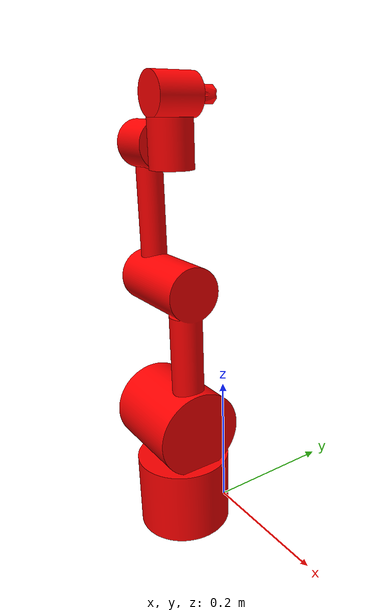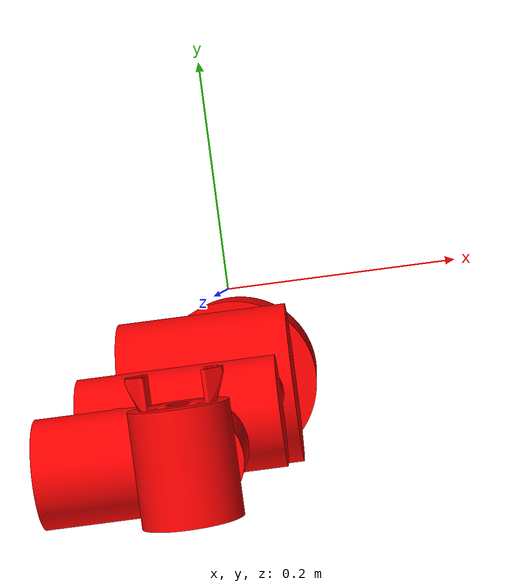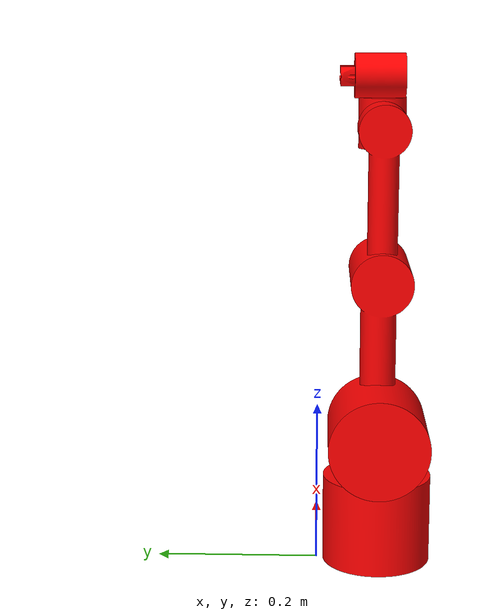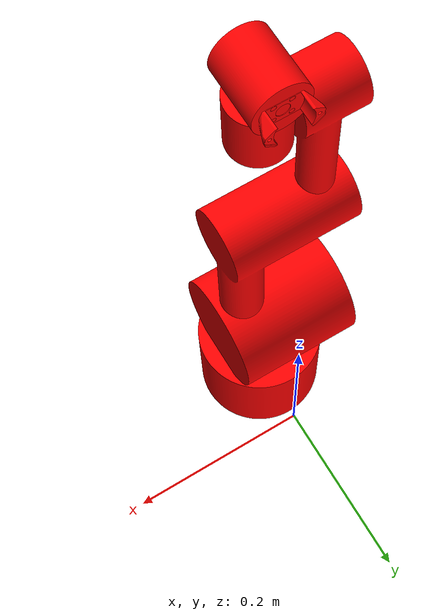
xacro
<?xml version="1.0" ?>
<robot name="we_r2_arm" xmlns:xacro="http://www.ros.org/wiki/xacro">
<link name="base_link">
  <visual>
    <origin rpy="0 0 0" xyz="0 0 0"/>
    <geometry>
      <mesh filename="package://we_r2_moveit_config/config/bin_stl/base_link_m-binary.stl"/>
    </geometry>
    <material name="silver">
      <color rgba="1 0 0 1"/>
    </material>
  </visual>
  <collision>
    <origin rpy="0 0 0" xyz="0 0 0"/>
    <geometry>
        <mesh filename="package://we_r2_moveit_config/config/col_stl/collision_base_link.stl"/>
    </geometry>
  </collision>
</link>
<link name="Forearm__1">
  <inertial>
    <origin rpy="0 0 0" xyz="-0.014792 -0.00013599999999999723 0.101354"/>
    <mass value="0.670217"/>
    <inertia ixx="0.004244" ixy="0.0" ixz="0.007572" iyy="0.004259" iyz="-0.007549" izz="0.000301"/>
  </inertial>
  <visual>
    <origin rpy="0 0 0" xyz="0.035775 0.074529 -0.366958"/>
    <geometry>
      <mesh filename="package://we_r2_moveit_config/config/bin_stl/Forearm__1_m-binary.stl"/>
    </geometry>
    <material name="silver">
      <color rgba="1 0 0 1"/>
    </material>
  </visual>
  <collision>
    <origin rpy="0 0 0" xyz="0.035775 0.074529 -0.366958"/>
    <geometry>
        <mesh filename="package://we_r2_moveit_config/config/col_stl/collision_forearm.stl"/>
    </geometry>
  </collision>
</link>
<link name="wrist_1__1">
  <inertial>
    <origin rpy="0 0 0" xyz="0.025382 -1.000000000001e-06 0.0072510000000000074"/>
    <mass value="0.282343"/>
    <inertia ixx="0.000154" ixy="0.0" ixz="0.011825" iyy="0.000162" iyz="-0.011831" izz="0.000133"/>
  </inertial>
  <visual>
    <origin rpy="0 0 0" xyz="0.024453 0.074942 -0.544758"/>
    <geometry>
      <mesh filename="package://we_r2_moveit_config/config/bin_stl/wrist_1__1_m-binary.stl"/>
    </geometry>
    <material name="silver">
      <color rgba="1 0 0 1"/>
    </material>
  </visual>
  <collision>
    <origin rpy="0 0 0" xyz="0.024453 0.074942 -0.544758"/>
    <geometry>
        <mesh filename="package://we_r2_moveit_config/config/col_stl/collision_wrist_1.stl"/>
    </geometry>
  </collision>
</link>
<link name="upper_arm__1">
  <inertial>
    <origin rpy="0 0 0" xyz="-0.015592 -6.1000000000005494e-05 0.20106100000000002"/>
    <mass value="0.465826"/>
    <inertia ixx="0.000327" ixy="0.0" ixz="0.012132" iyy="0.000496" iyz="-0.012106" izz="0.000474"/>
  </inertial>
  <visual>
    <origin rpy="0 0 0" xyz="-0.012324 0.074585 -0.163809"/>
    <geometry>
      <mesh filename="package://we_r2_moveit_config/config/bin_stl/upper_arm__1_m-binary.stl"/>
    </geometry>
    <material name="silver">
      <color rgba="1 0 0 1"/>
    </material>
  </visual>
  <collision>
    <origin rpy="0 0 0" xyz="-0.012324 0.074585 -0.163809"/>
    <geometry>
        <mesh filename="package://we_r2_moveit_config/config/col_stl/collision_upper_arm.stl"/>
    </geometry>
  </collision>
</link>
<link name="shoulder__1">
  <inertial>
    <origin rpy="0 0 0" xyz="-0.019159 8.900000000000574e-05 0.04272799999999999"/>
    <mass value="1.493039"/>
    <inertia ixx="0.002392" ixy="2e-06" ixz="0.012495" iyy="0.002653" iyz="-0.012347" izz="0.001979"/>
  </inertial>
  <visual>
    <origin rpy="0 0 0" xyz="-0.000666 0.07459 -0.106659"/>
    <geometry>
      <mesh filename="package://we_r2_moveit_config/config/bin_stl/shoulder__1_m-binary.stl"/>
    </geometry>
    <material name="silver">
      <color rgba="1 0 0 1"/>
    </material>
  </visual>
  <collision>
    <origin rpy="0 0 0" xyz="-0.000666 0.07459 -0.106659"/>
    <geometry>
        <mesh filename="package://we_r2_moveit_config/config/col_stl/collision_shoulder.stl"/>
    </geometry>
  </collision>
</link>
<link name="wrist_2__1">
  <inertial>
    <origin rpy="0 0 0" xyz="-3.399999999999974e-05 0.007306999999999994 0.025361000000000078"/>
    <mass value="0.282365"/>
    <inertia ixx="0.000162" ixy="-0.0" ixz="0.011849" iyy="0.000133" iyz="-0.011855" izz="0.000155"/>
  </inertial>
  <visual>
    <origin rpy="0 0 0" xyz="-0.002217 0.074916 -0.576213"/>
    <geometry>
      <mesh filename="package://we_r2_moveit_config/config/bin_stl/wrist_2__1_m-binary.stl"/>
    </geometry>
    <material name="silver">
      <color rgba="1 0 0 1"/>
    </material>
  </visual>
  <collision>
    <origin rpy="0 0 0" xyz="-0.002217 0.074916 -0.576213"/>
    <geometry>
        <mesh filename="package://we_r2_moveit_config/config/col_stl/collision_wrist_2.stl"/>
    </geometry>
  </collision>
</link>
<link name="end_effector_link__1">
  <inertial>
    <origin rpy="0 0 0" xyz="-3.800000000000027e-05 0.007937999999999994 -1.8000000000073513e-05"/>
    <mass value="0.0358"/>
    <inertia ixx="3e-06" ixy="-0.0" ixz="0.000809" iyy="1.2e-05" iyz="-0.000809" izz="1.2e-05"/>
  </inertial>
  <visual>
    <origin rpy="0 0 0" xyz="-0.002069 0.043403 -0.602813"/>
    <geometry>
      <mesh filename="package://we_r2_moveit_config/config/bin_stl/end_effector_link__1_m-binary.stl"/>
    </geometry>
    <material name="silver">
      <color rgba="1 0 0 1"/>
    </material>
  </visual>
  <collision>
    <origin rpy="0 1.5708 0" xyz="-3.800000000000027e-05 0.007937999999999994 -1.8000000000073513e-05"/>
    <geometry>
      <cylinder length="0.05" radius="0.02"/>
    </geometry>
  </collision>
</link>
<joint name="joint2" type="continuous">
  <origin rpy="0 0 0" xyz="-0.048099 5.6e-05 0.203149"/>
  <parent link="upper_arm__1"/>
  <child link="Forearm__1"/>
  <axis xyz="-0.01 1.7e-05 0.0"/>
  <limit effort="100" velocity="0.5"/>
</joint>
<transmission name="joint2_tran">
  <type>transmission_interface/SimpleTransmission</type>
  <joint name="joint2">
    <hardwareInterface>PositionJointInterface</hardwareInterface>
  </joint>
  <actuator name="joint2_actr">
    <hardwareInterface>PositionJointInterface</hardwareInterface>
    <mechanicalReduction>1</mechanicalReduction>
  </actuator>
</transmission>
<joint name="joint3" type="continuous">
  <origin rpy="0 0 0" xyz="0.011322 -0.000413 0.1778"/>
  <parent link="Forearm__1"/>
  <child link="wrist_1__1"/>
  <axis xyz="0.01 -1.7e-05 -0.0"/>
  <limit effort="100" velocity="0.5"/>
</joint>
<transmission name="joint3_tran">
  <type>transmission_interface/SimpleTransmission</type>
  <joint name="joint3">
    <hardwareInterface>PositionJointInterface</hardwareInterface>
  </joint>
  <actuator name="joint3_actr">
    <hardwareInterface>PositionJointInterface</hardwareInterface>
    <mechanicalReduction>1</mechanicalReduction>
  </actuator>
</transmission>
<joint name="joint1" type="continuous">
  <origin rpy="0 0 0" xyz="0.011658 5e-06 0.05715"/>
  <parent link="shoulder__1"/>
  <child link="upper_arm__1"/>
  <axis xyz="0.01 -1.7e-05 0.0"/>
  <limit effort="100" velocity="0.5"/>
</joint>
<transmission name="joint1_tran">
  <type>transmission_interface/SimpleTransmission</type>
  <joint name="joint1">
    <hardwareInterface>PositionJointInterface</hardwareInterface>
  </joint>
  <actuator name="joint1_actr">
    <hardwareInterface>PositionJointInterface</hardwareInterface>
    <mechanicalReduction>1</mechanicalReduction>
  </actuator>
</transmission>
<joint name="joint0" type="continuous">
  <origin rpy="0 0 0" xyz="0.000666 -0.07459 0.106659"/>
  <parent link="base_link"/>
  <child link="shoulder__1"/>
  <axis xyz="0.0 0.0 0.01"/>
  <limit effort="100" velocity="0.5"/>
</joint>
<transmission name="joint0_tran">
  <type>transmission_interface/SimpleTransmission</type>
  <joint name="joint0">
    <hardwareInterface>PositionJointInterface</hardwareInterface>
  </joint>
  <actuator name="joint0_actr">
    <hardwareInterface>PositionJointInterface</hardwareInterface>
    <mechanicalReduction>1</mechanicalReduction>
  </actuator>
</transmission>
<joint name="joint4" type="continuous">
  <origin rpy="0 0 0" xyz="0.02667 2.6e-05 0.031455"/>
  <parent link="wrist_1__1"/>
  <child link="wrist_2__1"/>
  <axis xyz="0.0 2.2e-05 0.01"/>
  <limit effort="100" velocity="0.5"/>
</joint>
<transmission name="joint4_tran">
  <type>transmission_interface/SimpleTransmission</type>
  <joint name="joint4">
    <hardwareInterface>PositionJointInterface</hardwareInterface>
  </joint>
  <actuator name="joint4_actr">
    <hardwareInterface>PositionJointInterface</hardwareInterface>
    <mechanicalReduction>1</mechanicalReduction>
  </actuator>
</transmission>
<joint name="joint5" type="continuous">
  <origin rpy="0 0 0" xyz="-0.000148 0.031513 0.0266"/>
  <parent link="wrist_2__1"/>
  <child link="end_effector_link__1"/>
  <axis xyz="-4.7e-05 0.01 -2.2e-05"/>
  <limit effort="100" velocity="0.5"/>
</joint>
<transmission name="joint5_tran">
  <type>transmission_interface/SimpleTransmission</type>
  <joint name="joint5">
    <hardwareInterface>PositionJointInterface</hardwareInterface>
  </joint>
  <actuator name="joint5_actr">
    <hardwareInterface>PositionJointInterface</hardwareInterface>
    <mechanicalReduction>1</mechanicalReduction>
  </actuator>
</transmission>
<gazebo>
  <plugin filename="libgazebo_ros_control.so" name="control"/>
</gazebo>
</robot>
